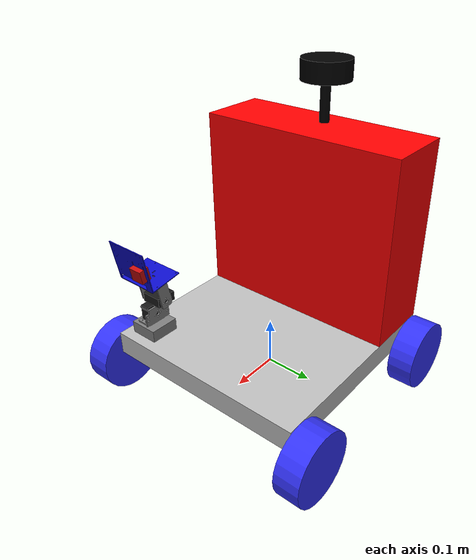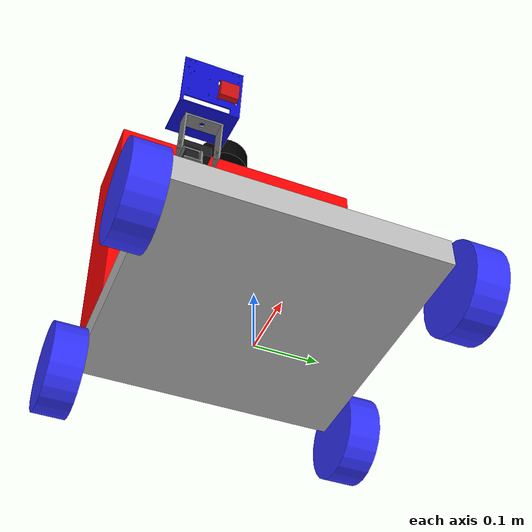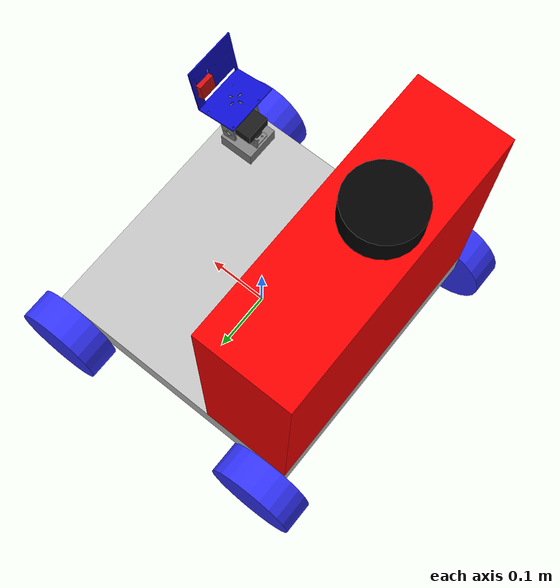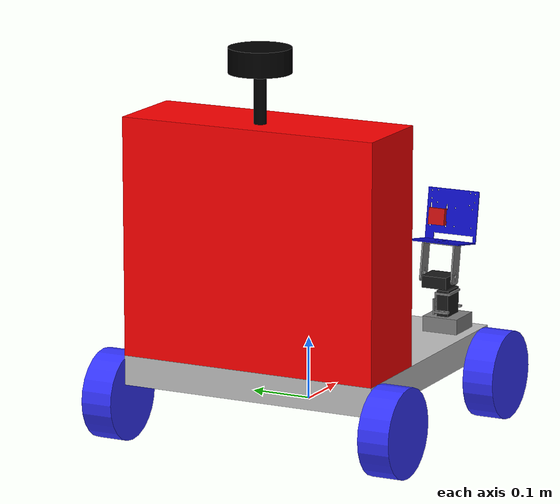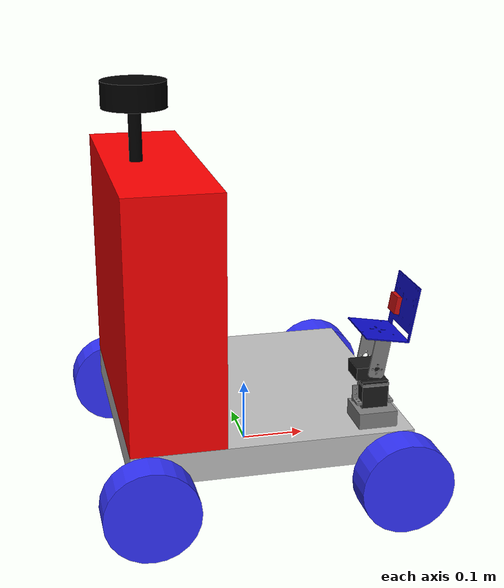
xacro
<?xml version="1.0"?>
<robot xmlns:xacro="http://www.ros.org/wiki/xacro"  name="robot">

    <xacro:arg name="use_ros2_control" default="true"/>
    <xacro:arg name="sim_mode" default="false"/>

    <xacro:include filename="robot_gardener_core.xacro" />

    <xacro:if value="$(arg use_ros2_control)">
        <xacro:include filename="ros2_control_combined.xacro" />
    </xacro:if>
    <xacro:unless value="$(arg use_ros2_control)">
        <xacro:include filename="gazebo_control.xacro" />
    </xacro:unless>
    <xacro:include filename="lidar.xacro" />
    <xacro:include filename="pan_tilt_xacros/robot_pan_tilt.xacro" />

    <xacro:include filename="ros2_control_params.xacro" />

</robot>

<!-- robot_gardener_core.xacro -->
<robot xmlns:xacro="http://ros.org/wiki/xacro" name="four_wheel_drive_robot">

  <xacro:include filename="robot_dimensions.xacro"/>
  <xacro:include filename="inertial_macros.xacro"/>
  <!-- Colors -->
  <xacro:property name="color_chassis" value="0.6 0.6 0.6 1.0"/> <!-- metallic gray -->
  <xacro:property name="color_wheel" value="0.05 0.05 0.05 1.0"/> <!-- black -->

  <material name="white">
      <color rgba="1 1 1 1" />
  </material>

  <material name="gray">
      <color rgba="0.75 0.75 0.75 1" />
  </material>

  <material name="orange">
      <color rgba="1 0.3 0.1 1"/>
  </material>

  <material name="blue">
      <color rgba="0.2 0.2 1 1"/>
  </material>

  <material name="black">
      <color rgba="0 0 0 1"/>
  </material>

  <material name="red">
      <color rgba="1 0 0 1"/>
  </material>

  <xacro:macro name="set_gazebo_color" params="link_name color_name">
    <gazebo reference="${link_name}">
      <material>Gazebo/${color_name}</material>
    </gazebo>
  </xacro:macro>

  <!-- Macros                -->

  <!-- Shelf Macro -->
  <xacro:macro name="shelf_link" params="name width depth height mass">
    <link name="${name}">
        <xacro:inertial_box mass="${mass}" x="${depth}" y="${width}" z="${height}">
          <origin xyz="${depth/2} 0 ${height/2}" rpy="0 0 0"/>
        </xacro:inertial_box>
      <visual>
        <origin xyz="${depth/2} 0 ${height/2}" rpy="0 0 0"/>
        <geometry>
          <box size="${depth} ${width} ${height}"/>
        </geometry>
        <material name="red"/>
      </visual>
      <collision>
        <origin xyz="${depth/2} 0 ${height/2}" rpy="0 0 0"/>
        <geometry>
          <box size="${depth} ${width} ${height}"/>
        </geometry>
      </collision>
    </link>
  </xacro:macro>

  <!-- Wheel Macro -->
  <xacro:macro name="wheel_link" params="name">
    <link name="${name}">
        <xacro:inertial_cylinder mass="${wheel_mass}" length="${wheel_width}" radius="${wheel_radius}">
          <origin xyz="0 0 0" rpy="0 0 0"/>
        </xacro:inertial_cylinder>
      <visual>
        <geometry>
          <cylinder length="${wheel_width}" radius="${wheel_radius}"/>
        </geometry>
        <material name="blue"/>
      </visual>
      <collision>
        <geometry>
          <cylinder length="${wheel_width}" radius="${wheel_radius}"/>
        </geometry>
      </collision>
    </link>
  </xacro:macro>

  <!-- BASE LINK -->

  <link name="base_link">

  </link>

    <!-- BASE_FOOTPRINT LINK -->

  <joint name="base_footprint_joint" type="fixed">
    <parent link="base_link"/>
    <child link="base_footprint"/>
    <origin xyz="0 0 0" rpy="0 0 0"/>
  </joint>

  <link name="base_footprint">
  </link>

  <!-- Robot Structure       -->

  <!-- Chassis -->

  <joint name="chassis_joint" type="fixed">
    <parent link="base_link"/>
    <child link="chassis"/>
    <origin xyz="0 0 ${wheel_radius-chassis_wheel_offset_z}"/>
  </joint>

  <link name="chassis">
    <visual>
      <origin xyz="0 0 ${chassis_height/2}" rpy="0 0 0"/>
      <geometry>
          <box size="${chassis_length} ${chassis_width} ${chassis_height}"/>
      </geometry>
      <material name="gray"/>
    </visual>
    <collision>
      <origin xyz="0 0 ${chassis_height/2}" rpy="0 0 0"/>
      <geometry>
        <box size="${chassis_length} ${chassis_width} ${chassis_height}"/>
      </geometry>
    </collision>
    <xacro:inertial_box mass="${chassis_mass}" x="${chassis_length}" y="${chassis_width}" z="${chassis_height}">
      <origin xyz="0 0 ${chassis_height/2}" rpy="0 0 0"/>
    </xacro:inertial_box>
  </link>

  <gazebo reference="chassis">
    <material>
      <ambient>0.75 0.75 0.75 1</ambient>   <!-- Light gray / silver -->
      <diffuse>0.75 0.75 0.75 1</diffuse>
      <specular>0.9 0.9 0.9 1</specular>
      <emissive>0 0 0 1</emissive>
    </material>
  </gazebo>

   <!-- Wheels -->
  <xacro:wheel_link name="left_front_wheel"/>
  <xacro:wheel_link name="left_rear_wheel"/>
  <xacro:wheel_link name="right_front_wheel"/>
  <xacro:wheel_link name="right_rear_wheel"/>

  <xacro:set_gazebo_color link_name="left_front_wheel" color_name="Blue"/>
  <xacro:set_gazebo_color link_name="left_rear_wheel" color_name="Red"/>
  <xacro:set_gazebo_color link_name="right_front_wheel" color_name="Blue"/>
  <xacro:set_gazebo_color link_name="right_rear_wheel" color_name="Red"/>

  <!-- Shelves -->
  <xacro:shelf_link name="shelf1"
                    width="${shelf1_width}"
                    depth="${shelf1_depth}"
                    height="${shelf1_height}"
                    mass="${shelf_mass}"/>

  <!-- Joints                -->

  <!-- Shelves fixed to chassis -->
  <joint name="shelf1_joint" type="fixed">
    <parent link="chassis"/>
    <child link="shelf1"/>
    <origin xyz="-${chassis_length/2} 0 ${chassis_height}"/>
  </joint>
  <xacro:set_gazebo_color link_name="shelf1" color_name="Red"/>

  <!-- Wheels revolute joints -->
  <joint name="left_front_wheel_joint" type="continuous">
    <parent link="base_link"/>
    <child link="left_front_wheel"/>
    <origin xyz="${wheel_x_offset} ${wheel_y_offset} ${wheel_z_offset}" rpy="-${pi/2} 0 0"/>
    <axis xyz="0 0 1"/>
  </joint>
  <joint name="left_rear_wheel_joint" type="continuous">
    <parent link="base_link"/>
    <child link="left_rear_wheel"/>
    <origin xyz="${-wheel_x_offset} ${wheel_y_offset} ${wheel_z_offset}" rpy="-${pi/2} 0 0"/>
    <axis xyz="0 0 1"/>
  </joint>
  <joint name="right_front_wheel_joint" type="continuous">
    <parent link="base_link"/>
    <child link="right_front_wheel"/>
    <origin xyz="${wheel_x_offset} ${-wheel_y_offset} ${wheel_z_offset}" rpy="${pi/2} 0 0"/>
    <axis xyz="0 0 -1"/>
  </joint>
  <joint name="right_rear_wheel_joint" type="continuous">
    <parent link="base_link"/>
    <child link="right_rear_wheel"/>
    <origin xyz="${-wheel_x_offset} ${-wheel_y_offset} ${wheel_z_offset}" rpy="${pi/2} 0 0"/>
    <axis xyz="0 0 -1"/>
  </joint>

</robot>

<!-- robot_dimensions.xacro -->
<robot xmlns:xacro="http://ros.org/wiki/xacro">

  <!-- Chassis -->
  <xacro:property name="chassis_length" value="0.432"/>
  <xacro:property name="chassis_width" value="0.432"/>
  <xacro:property name="chassis_height" value="0.048"/>
  <xacro:property name="chassis_wheel_offset_z" value="0.024"/>
  <xacro:property name="chassis_wheel_offset_x" value="0.024"/>
  <xacro:property name="chassis_mass" value="6.0"/>

  <!-- Shelf 1 -->
  <xacro:property name="shelf1_height" value="0.384"/>
  <xacro:property name="shelf1_depth" value="0.144"/>
  <xacro:property name="shelf1_width" value="${chassis_width}"/>
  <xacro:property name="shelf1_z" value="${chassis_height + 0.05}"/>
  <xacro:property name="shelf1_y" value="${-chassis_length/2 + shelf1_depth/2}"/>

  <!-- Shelf 2 -->
  <xacro:property name="shelf2_height" value="0.05"/>
  <xacro:property name="shelf2_depth" value="0.18"/>
  <xacro:property name="shelf2_width" value="${chassis_width}"/>
  <xacro:property name="shelf2_z" value="${chassis_height + 0.15}"/>
  <xacro:property name="shelf2_y" value="${-chassis_length/2 + shelf2_depth/2}"/>

  <!-- Shelf Mass -->
  <xacro:property name="shelf_mass" value="1.0"/>

  <!-- Wheel -->
  <xacro:property name="wheel_radius" value="0.072"/>
  <xacro:property name="wheel_width" value="0.052"/>
  <xacro:property name="wheel_mass" value="0.5"/>

  <!-- Wheel Offsets -->
  <xacro:property name="wheel_x_offset" value="${chassis_length/2 - chassis_wheel_offset_x}"/>
  <xacro:property name="wheel_y_offset" value="${chassis_width/2 + wheel_width/2}"/>
  <xacro:property name="wheel_z_offset" value="${chassis_wheel_offset_z}"/>

</robot>

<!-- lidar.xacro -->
<robot xmlns:xacro="http://www.ros.org/wiki/xacro" >

    <joint name="laser_joint" type="fixed">
        <parent link="chassis"/>
        <child link="laser_frame"/>
        <origin xyz="${-chassis_length/2+0.05} 0 ${chassis_height+shelf1_height+0.1}" rpy="0 0 0"/>
    </joint>

    <link name="laser_frame">
        <visual>
            <geometry>
                <cylinder radius="0.05" length="0.04"/>
            </geometry>
            <material name="black"/>
        </visual>
        <visual>
            <origin xyz="0 0 -0.05"/>
            <geometry>
                <cylinder radius="0.01" length="0.1"/>
            </geometry>
            <material name="black"/>
        </visual>
        <collision>
            <geometry>
                <cylinder radius="0.05" length="0.04"/>
            </geometry>
        </collision>
        <xacro:inertial_cylinder mass="0.1" length="0.04" radius="0.05">
            <origin xyz="0 0 0" rpy="0 0 0"/>
        </xacro:inertial_cylinder>
    </link>

    <gazebo reference="laser_frame">
        <material>Gazebo/Black</material>

        <sensor name="laser" type="gpu_lidar">
            <pose> 0 0 0 0 0 0 </pose>
            <visualize>false</visualize>
            <update_rate>10</update_rate>
            <lidar>
                <scan>
                    <horizontal>
                        <samples>360</samples>
                        <min_angle>-3.14</min_angle>
                        <max_angle>3.14</max_angle>
                    </horizontal>
                </scan>
                <range>
                    <min>0.3</min>
                    <max>12</max>
                </range>
            </lidar>
            <topic>scan</topic>
            <gz_frame_id>laser_frame</gz_frame_id>
        </sensor>
    </gazebo>

</robot>

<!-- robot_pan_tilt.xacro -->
<robot xmlns:xacro="http://www.ros.org/wiki/xacro" >
  <xacro:include filename="$(find pan_tilt_description)/urdf/pan_tilt.xacro"/>

  <!-- Instantiate the pan-tilt mechanism -->
  <xacro:pan_tilt_mechanism parent="chassis">
    <origin xyz="${chassis_length/2-0.08+0.028} -${chassis_width/2-0.088+0.04} ${chassis_height}" rpy="0 0.0 0"/>
  </xacro:pan_tilt_mechanism>

</robot>

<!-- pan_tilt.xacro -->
<robot xmlns:xacro="http://www.ros.org/wiki/xacro">

  <!-- Pan-Tilt Mechanism with Camera Mount for MG995/MG996 Servos -->

  <xacro:macro name="pan_tilt_mechanism" params="parent *origin">

    <!-- Properties for MG995/MG996 Servo Dimensions -->
    <xacro:property name="servo_length" value="0.0408"/>  <!-- 40.8mm -->
    <xacro:property name="servo_width" value="0.0197"/>   <!-- 19.7mm -->
    <xacro:property name="servo_height" value="0.0428"/>  <!-- 42.8mm -->
    <xacro:property name="servo_horn_radius" value="0.008"/> <!-- 8mm -->
    <xacro:property name="servo_horn_height" value="0.004"/> <!-- 4mm -->

    <!-- Base Properties -->
    <xacro:property name="base_length" value="0.06"/>
    <xacro:property name="base_width" value="0.06"/>
    <xacro:property name="base_height" value="0.025"/>

    <!-- Camera Properties -->
    <xacro:property name="camera_length" value="0.02"/>
    <xacro:property name="camera_width" value="0.028"/>
    <xacro:property name="camera_height" value="0.027"/>

    <xacro:property name="camera_mount_w" value="0.09"/>
    <xacro:property name="camera_mount_l" value="0.068"/>
    <xacro:property name="camera_mount_h" value="0.085"/>

    <xacro:property name="pan_tilt_leg_l" value="0.025"/>
    <xacro:property name="pan_tilt_leg_w" value="0.058"/>
    <xacro:property name="pan_tilt_leg_h" value="0.065"/>

    <!-- Mount Properties -->
    <xacro:property name="mount_thickness" value="0.0052"/>
    <xacro:property name="bracket_height" value="0.04"/>

    <!-- Materials -->
    <material name="servo_black">
      <color rgba="0.1 0.1 0.1 1.0"/>
    </material>

    <material name="bracket_gray">
      <color rgba="0.5 0.5 0.5 1.0"/>
    </material>

    <material name="camera_black">
      <color rgba="0.05 0.05 0.05 1.0"/>
    </material>

    <material name="camera_red">
      <color rgba="0.8 0.05 0.05 1.0"/>
    </material>

    <material name="camera_blue">
      <color rgba="0.05 0.05 0.8 1.0"/>
    </material>

    <!-- Base Link -->
    <joint name="pan_tilt_base_joint" type="fixed">
      <xacro:insert_block name="origin"/>
      <parent link="${parent}"/>
      <child link="pan_tilt_base_link"/>
    </joint>

    <link name="pan_tilt_base_link">
      <visual>
        <origin xyz="0 0 ${base_height/2}" rpy="0 0 0"/>
        <geometry>
          <box size="${base_length} ${base_width} ${base_height}"/>
        </geometry>
        <material name="bracket_gray"/>
      </visual>
      <collision>
        <origin xyz="0 0 ${base_height/2}" rpy="0 0 0"/>
        <geometry>
          <box size="${base_length} ${base_width} ${base_height}"/>
        </geometry>
      </collision>
      <inertial>
        <origin xyz="0 0 ${base_height/2}" rpy="0 0 0"/>
        <mass value="0.05"/>
        <inertia ixx="0.00002" ixy="0.0" ixz="0.0"
                 iyy="0.00002" iyz="0.0"
                 izz="0.00003"/>
      </inertial>
    </link>

    <!-- Pan Servo (Bottom Servo - Yaw rotation) -->
    <link name="pan_servo_bracket_link">
      <visual>
        <origin xyz="0 0 ${servo_height/2}" rpy="1.57 0 0"/>
        <geometry>
          <mesh filename="file://$(find pan_tilt_description)/urdf/meshes/stls/PAN-TILT_BASE_V1_fixed.stl" scale="0.001 0.001 0.001" />
        </geometry>
        <material name="bracket_gray"/>
      </visual>
      <collision>
        <origin xyz="0 0 ${servo_height/2}" rpy="1.57 0 0"/>
        <geometry>
          <mesh filename="file://$(find pan_tilt_description)/urdf/meshes/stls/PAN-TILT_BASE_V1_fixed.stl" scale="0.001 0.001 0.001" />
        </geometry>
      </collision>
      <inertial>
        <origin xyz="0 0 ${servo_height/2}" rpy="1.57 0 0"/>
        <mass value="0.055"/>
        <inertia ixx="0.00001" ixy="0.0" ixz="0.0"
                 iyy="0.00001" iyz="0.0"
                 izz="0.00001"/>
      </inertial>
    </link>

    <joint name="pan_servo_bracket_joint" type="fixed">
      <origin xyz="0 0 ${base_height}" rpy="0 0 0"/>
      <parent link="pan_tilt_base_link"/>
      <child link="pan_servo_bracket_link"/>
    </joint>

    <link name="pan_servo_link">
      <visual>
        <origin xyz="0 0 ${servo_height/2}" rpy="0 0 0"/>
        <geometry>
          <box size="${servo_length} ${servo_width} ${servo_height}"/>
        </geometry>
        <material name="servo_black"/>
      </visual>
      <collision>
        <origin xyz="0 0 ${servo_height/2}" rpy="0 0 0"/>
        <geometry>
          <box size="${servo_length} ${servo_width} ${servo_height}"/>
        </geometry>
      </collision>
      <inertial>
        <origin xyz="0 0 ${servo_height/2}" rpy="0 0 0"/>
        <mass value="0.055"/>
        <inertia ixx="0.00001" ixy="0.0" ixz="0.0"
                 iyy="0.00001" iyz="0.0"
                 izz="0.00001"/>
      </inertial>
    </link>

    <joint name="pan_servo_joint" type="fixed">
      <origin xyz="0 0 0" rpy="0 0 0"/>
      <parent link="pan_servo_bracket_link"/>
      <child link="pan_servo_link"/>
    </joint>

    <!-- Pan Link (Rotating part controlled by pan servo) -->
    <link name="pan_link">
      <visual>
        <origin xyz="0 0 0" rpy="0 0 0"/>
        <geometry>
          <mesh filename="file://$(find pan_tilt_description)/urdf/meshes/stls/PAN-TILT_ROTOR_V2_fixed.stl" scale="0.001 0.001 0.001" />
        </geometry>
        <material name="bracket_gray"/>
      </visual>
      <collision>
        <origin xyz="0 0 0" rpy="0 0 0"/>
        <geometry>
          <mesh filename="file://$(find pan_tilt_description)/urdf/meshes/stls/PAN-TILT_ROTOR_V2_fixed.stl" scale="0.001 0.001 0.001" />
        </geometry>
      </collision>
      <inertial>
        <origin xyz="0 0 0" rpy="0 0 0"/>
        <mass value="0.02"/>
        <inertia ixx="0.000005" ixy="0.0" ixz="0.0"
                 iyy="0.000005" iyz="0.0"
                 izz="0.000001"/>
      </inertial>
    </link>

    <joint name="pan_joint" type="revolute">
      <origin xyz="-${servo_length/4} 0 ${servo_height + servo_horn_height}" rpy="0 0 0"/>
      <parent link="pan_servo_link"/>
      <child link="pan_link"/>
      <axis xyz="0 0 1"/>
      <limit lower="${-pi}" upper="${pi}" effort="10.0" velocity="1.57"/>
      <dynamics damping="0.1" friction="0.1"/>
    </joint>

    <!-- Tilt Servo (Top Servo - Pitch rotation) -->
    <link name="tilt_servo_link">
      <visual>
        <origin xyz="0 0 0" rpy="${pi/2} 0 0"/>
        <geometry>
          <box size="${servo_length} ${servo_width} ${servo_height}"/>
        </geometry>
        <material name="servo_black"/>
      </visual>
      <collision>
        <origin xyz="0 0 0" rpy="0 ${pi/2} 0"/>
        <geometry>
          <box size="${servo_length} ${servo_width} ${servo_height}"/>
        </geometry>
      </collision>
      <inertial>
        <origin xyz="0 0 0" rpy="0 ${pi/2} 0"/>
        <mass value="0.055"/>
        <inertia ixx="0.00001" ixy="0.0" ixz="0.0"
                 iyy="0.00001" iyz="0.0"
                 izz="0.00001"/>
      </inertial>
    </link>

    <joint name="tilt_servo_joint" type="fixed">
      <origin xyz="0 ${servo_height/4} ${mount_thickness*2}" rpy="0 0 0"/>
      <parent link="pan_link"/>
      <child link="tilt_servo_link"/>
    </joint>

    <!-- Tilt Link (Rotating part controlled by tilt servo) -->
    <link name="tilt_link">
      <visual>
        <origin xyz="0 -0.022 0" rpy="0 0 0"/>
        <geometry>
          <mesh filename="file://$(find pan_tilt_description)/urdf/meshes/stls/PAN-TILT_LEG_V2_fixed.stl" scale="0.001 0.001 0.001" />
        </geometry>
        <material name="bracket_gray"/>
      </visual>
      <collision>
        <origin xyz="0 -0.022 0" rpy="0 0 0"/>
        <geometry>
          <mesh filename="file://$(find pan_tilt_description)/urdf/meshes/stls/PAN-TILT_LEG_V2_fixed.stl" scale="0.001 0.001 0.001" />
        </geometry>
      </collision>
      <inertial>
        <origin xyz="0 -0.022 0" rpy="0 0 0"/>
        <mass value="0.02"/>
        <inertia ixx="0.000001" ixy="0.0" ixz="0.0"
                 iyy="0.000005" iyz="0.0"
                 izz="0.000005"/>
      </inertial>
    </link>

    <joint name="tilt_joint" type="revolute">
      <origin xyz="${servo_length/4} 0.005 ${servo_height/10}" rpy="-1.4 0 1.57"/>
      <parent link="tilt_servo_link"/>
      <child link="tilt_link"/>
      <axis xyz="1 0 0"/>
      <limit lower="${-pi/2}" upper="${pi/2}" effort="10.0" velocity="1.57"/>
      <dynamics damping="0.1" friction="0.1"/>
    </joint>

    <!-- Camera Link -->
    <link name="pan_tilt_camera_link">
      <visual>
        <origin xyz="0 0 0" rpy="0 0 1.57"/>
        <geometry>
          <mesh filename="file://$(find pan_tilt_description)/urdf/meshes/stls/pi_stand_final_v2-Body_v2_fixed.stl" scale="0.001 0.001 0.001" />
        </geometry>
        <material name="camera_blue"/>
      </visual>
      <collision>
        <origin xyz="0 0 0" rpy="0 0 1.57"/>
        <geometry>
          <mesh filename="file://$(find pan_tilt_description)/urdf/meshes/stls/pi_stand_final_v2-Body_v2_fixed.stl" scale="0.001 0.001 0.001" />
        </geometry>
      </collision>
      <inertial>
        <origin xyz="0 0 0" rpy="0 0 1.57"/>
        <mass value="0.01"/>
        <inertia ixx="0.000001" ixy="0.0" ixz="0.0"
                 iyy="0.000001" iyz="0.0"
                 izz="0.000001"/>
      </inertial>
    </link>

    <joint name="camera_mount_joint" type="fixed">
      <origin xyz="0 -${pan_tilt_leg_h/2 +0.022+ camera_mount_h/2} 0" rpy="0 1.57 -1.57"/>
      <parent link="tilt_link"/>
      <child link="pan_tilt_camera_link"/>
    </joint>

    <!-- Camera Link -->
    <link name="rgb_camera_link">
      <visual>
        <origin xyz="0 0 0" rpy="0 0 0"/>
        <geometry>
          <box size="${camera_length} ${camera_width} ${camera_height}"/>
        </geometry>
        <material name="camera_red"/>
      </visual>
      <collision>
        <origin xyz="0 0 0" rpy="0 0 0"/>
        <geometry>
          <box size="${camera_length} ${camera_width} ${camera_height}"/>
        </geometry>
      </collision>
      <inertial>
        <origin xyz="0 0 0" rpy="0 0 0"/>
        <mass value="0.01"/>
        <inertia ixx="0.000001" ixy="0.0" ixz="0.0"
                 iyy="0.000001" iyz="0.0"
                 izz="0.000001"/>
      </inertial>

    </link>

    <joint name="rgb_camera_joint" type="fixed">
      <origin xyz="${camera_mount_l/2} 0.024 -0.004" rpy="0 0 0"/>
      <parent link="pan_tilt_camera_link"/>
      <child link="rgb_camera_link"/>
    </joint>

    <!-- Camera Optical Frame (for proper ROS camera convention) -->
    <link name="rgb_camera_optical_link"/>

    <joint name="camera_optical_joint" type="fixed">
      <origin xyz="0 0 0" rpy="${-pi/2} 0 ${-pi/2}"/>
      <parent link="rgb_camera_link"/>
      <child link="rgb_camera_optical_link"/>
    </joint>

  </xacro:macro>

  <gazebo reference="rgb_camera_link">
    <sensor name="depth_camera" type="depth_camera">
      <camera>
        <horizontal_fov>1.25</horizontal_fov>
        <image>
          <width>320</width>
          <height>240</height>
          <format>R8G8B8</format>
        </image>
        <clip>
          <near>0.1</near>
          <far>20</far>
        </clip>
        <optical_frame_id>rgb_camera_optical_link</optical_frame_id>
        <camera_info_topic>camera/depth/camera_info</camera_info_topic>
      </camera>
      <always_on>1</always_on>
      <update_rate>20</update_rate>
      <visualize>true</visualize>
      <topic>camera/depth/image_raw</topic>
      <point_cloud_topic>camera/depth/points</point_cloud_topic>
      <gz_frame_id>rgb_camera_link</gz_frame_id>
    </sensor>
    <sensor name="camera" type="camera">
      <camera>
        <horizontal_fov>1.25</horizontal_fov>
        <image>
          <width>320</width>
          <height>240</height>
          <format>R8G8B8</format>
        </image>
        <clip>
          <near>0.1</near>
          <far>20</far>
        </clip>
        <optical_frame_id>rgb_camera_optical_link</optical_frame_id>
        <camera_info_topic>camera/camera_info</camera_info_topic>
      </camera>
      <always_on>1</always_on>
      <update_rate>20</update_rate>
      <visualize>true</visualize>
      <topic>camera/image_raw</topic>
    </sensor>
  </gazebo>

</robot>
